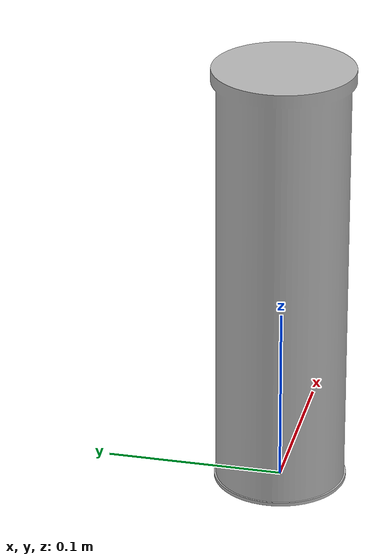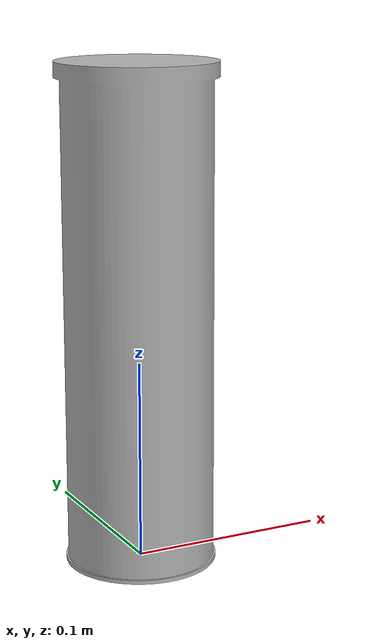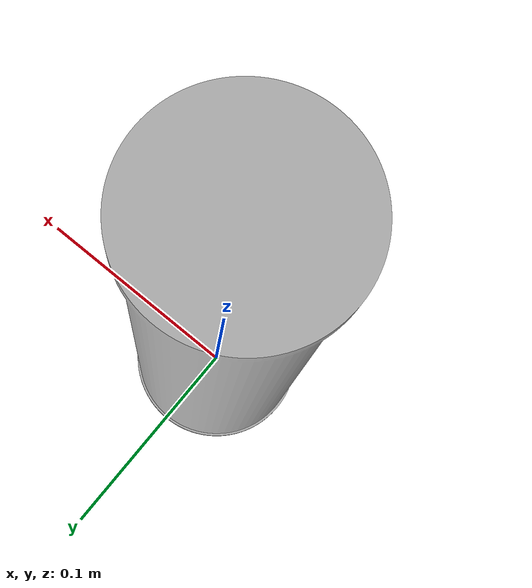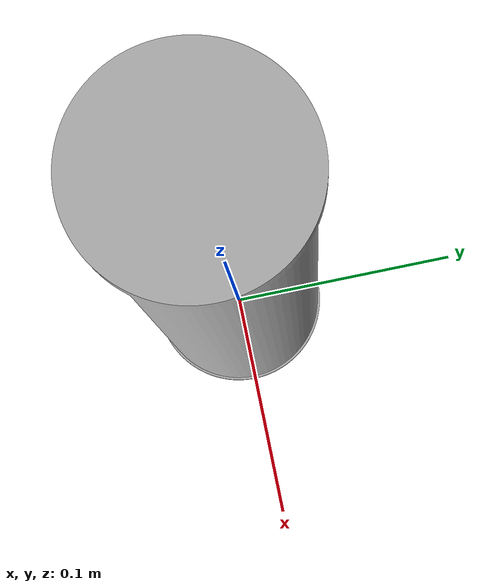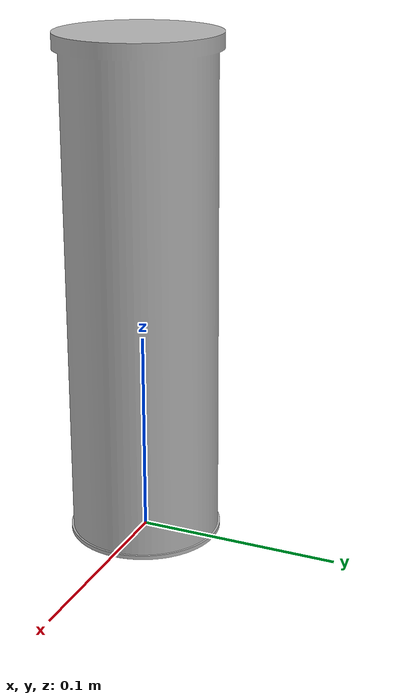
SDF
<?xml version="1.0" ?>
<sdf version="1.4">
  <model name="pringles">
    <link name="link">
      <inertial>
        <mass>0.2</mass>
      </inertial>
      <collision name="collision">
        <pose>0.0 0.0 0.0 0 0.0 0.0</pose>
        <geometry>
          <mesh>
            <uri>model://pringles/meshes/pringles.stl</uri>
          </mesh>
        </geometry>
      </collision>
      <visual name="visual">
        <pose>0.0 0.0 0.0 0 0.0 0.0</pose>
        <geometry>
          <mesh>
            <uri>model://pringles/meshes/pringles.stl</uri>
          </mesh>
        </geometry>
      </visual>
    </link>
  </model>
</sdf>
